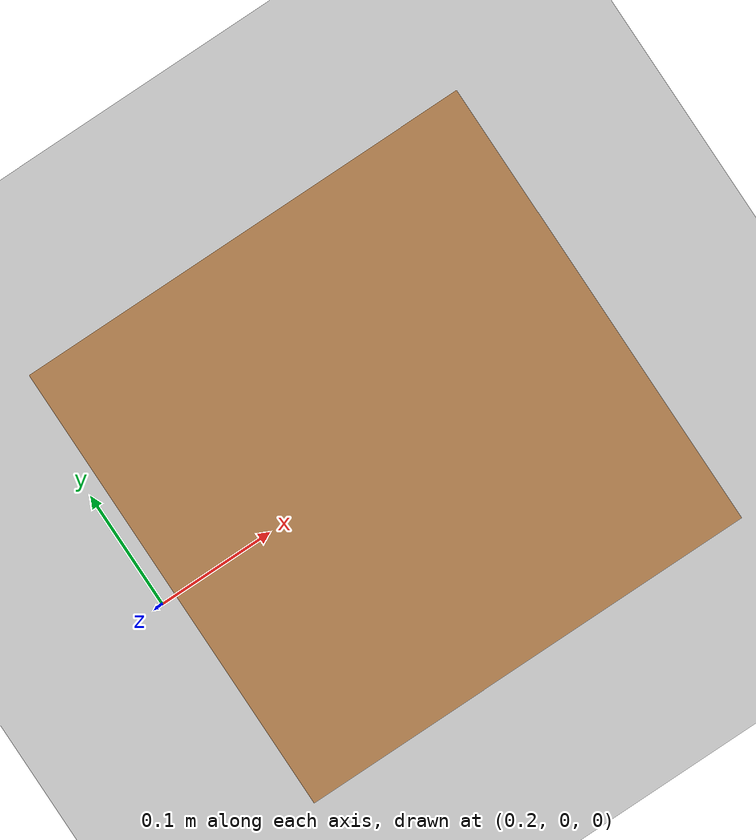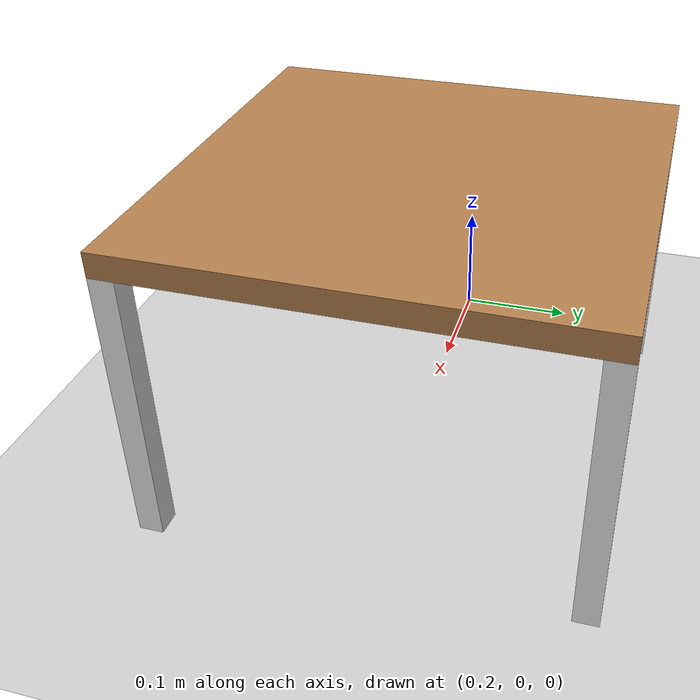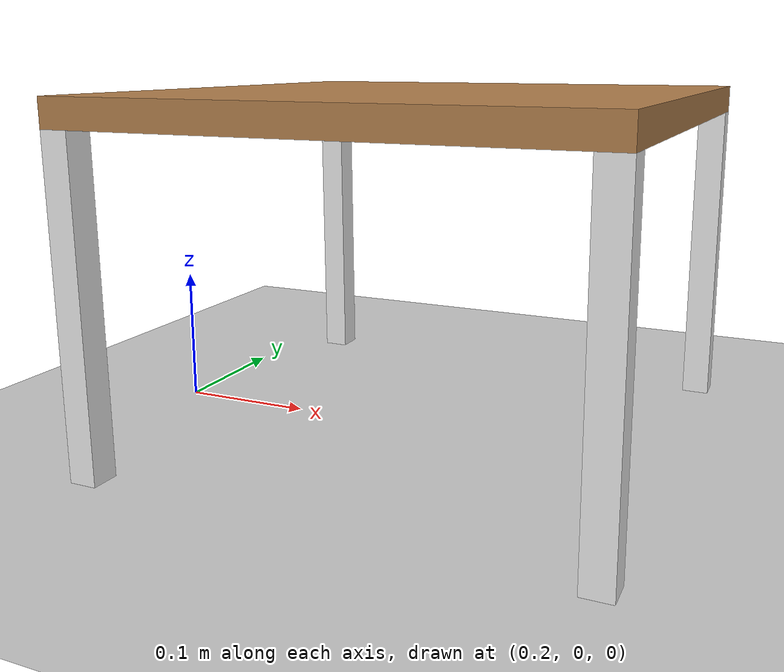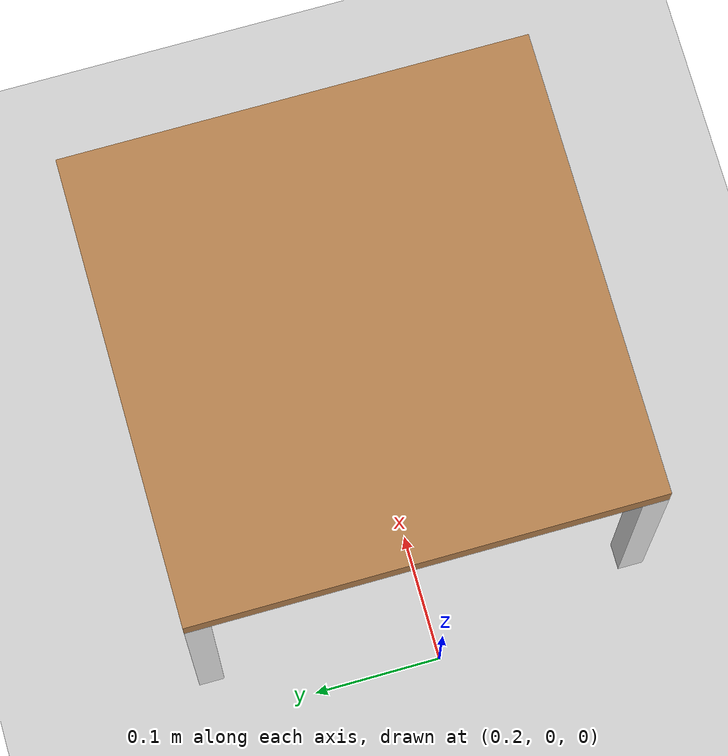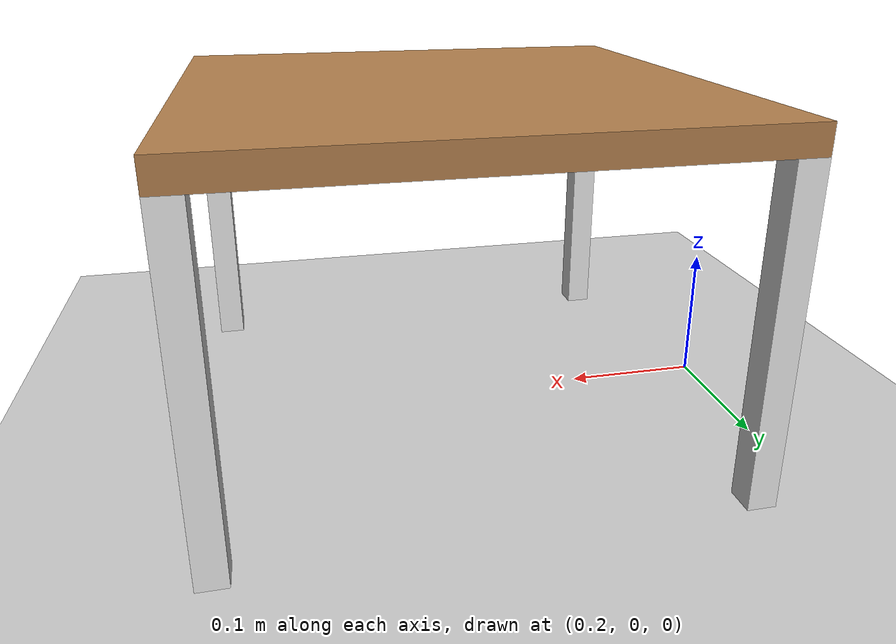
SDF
<sdf version="1.6">
 <world name="default">
  <include><uri>model://ground_plane</uri></include>
  <include><uri>model://sun</uri></include>
  <physics type="ode"><real_time_update_rate>1000.0</real_time_update_rate></physics>
  <gravity>0.0 0.0 0.0</gravity>
  <model name="work_table">
   <static>true</static>
   <link name="table">
    <visual name="visual1">
     <pose>0.41057557 0.00559949 0.24 0 0 0</pose>
     <geometry><box><size>0.36 0.36 0.020</size></box></geometry>
     <material>
      <script><uri>file://media/materials/scripts/gazebo.material</uri><name>Gazebo/Wood</name></script>
     </material>
    </visual>
   </link>
   <link name="link">
    <visual name="front_left_leg">
     <pose>0.58057557 0.17559949 0.115 0 0 0</pose>
     <geometry><box><size>0.02 0.02 0.23</size></box></geometry>
     <material>
      <script><uri>file://media/materials/scripts/gazebo.material</uri><name>Gazebo/White</name></script>
     </material>
    </visual>
    <visual name="front_right_leg">
     <pose>0.58057557 -0.16440051 0.115 0 0 0</pose>
     <geometry><box><size>0.02 0.02 0.23</size></box></geometry>
     <material>
      <script><uri>file://media/materials/scripts/gazebo.material</uri><name>Gazebo/White</name></script>
     </material>
    </visual>
    <visual name="back_right_leg">
     <pose>0.24057557 0.17559949 0.115 0 0 0</pose>
     <geometry><box><size>0.02 0.02 0.23</size></box></geometry>
     <material>
      <script><uri>file://media/materials/scripts/gazebo.material</uri><name>Gazebo/White</name></script>
     </material>
    </visual>
    <visual name="back_left_leg">
     <pose>0.24057557 -0.16440051 0.115 0 0 0</pose>
     <geometry><box><size>0.02 0.02 0.23</size></box></geometry>
     <material>
      <script><uri>file://media/materials/scripts/gazebo.material</uri><name>Gazebo/White</name></script>
     </material>
    </visual>
   </link>
  </model>
 </world>
</sdf>
